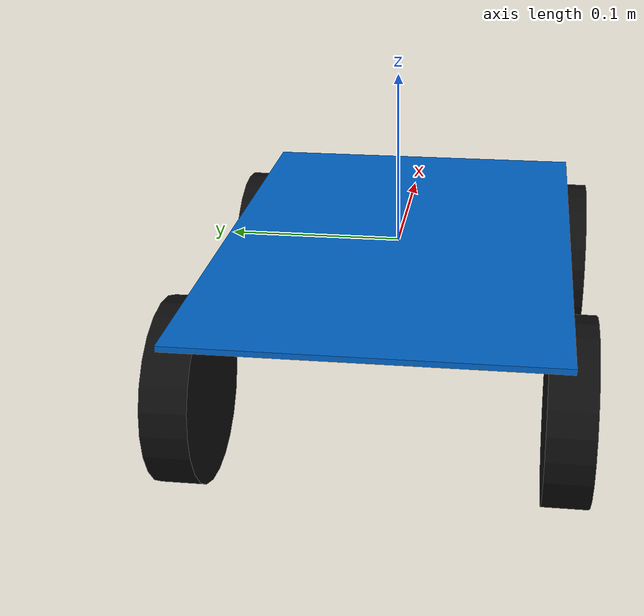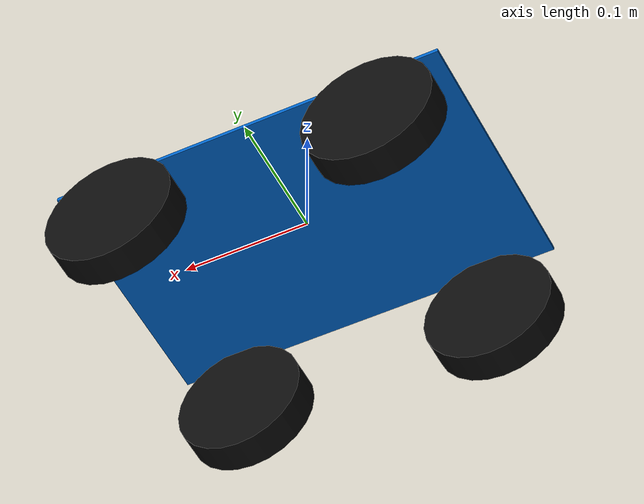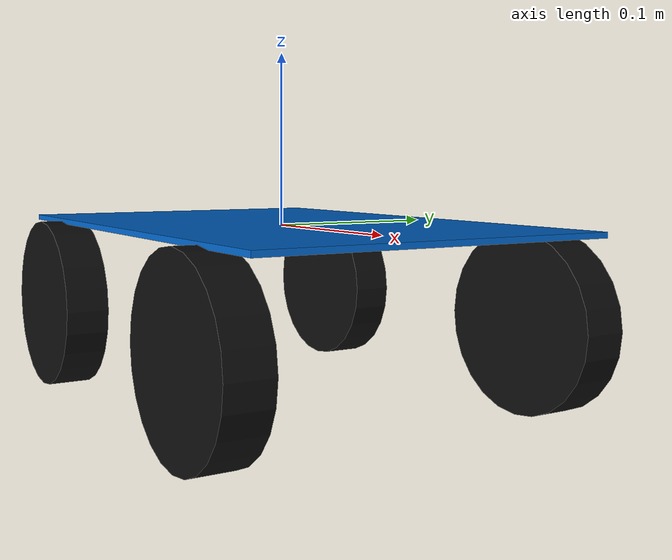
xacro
<?xml version="1.0"?>
<robot xmlns:xacro="http://www.ros.org/wiki/xacro" name="training_bot">

    <!-- gazebo | mujoco | mock -->
    <xacro:arg name="sim_backend" default="mock"/>
    <xacro:property name="sim_backend" value="$(arg sim_backend)"/>

    <!-- Base -->
    <link name="base_link">

        <inertial>
            <mass value="5.0"/>
            <origin xyz="0 0 0"/>
            <inertia
                ixx="0.02"
                ixy="0"
                ixz="0"
                iyy="0.04"
                iyz="0"
                izz="0.05"/>
        </inertial>

        <visual>
            <geometry>
                <box size="0.3048 0.2032 0.003175"/>
            </geometry>
            <material name="blue">
                <color rgba="0 0.4 0.8 1"/>
            </material>
        </visual>

        <collision>
            <geometry>
                <box size="0.3048 0.2032 0.003175"/>
            </geometry>
        </collision>

    </link>

    <!-- Wheel macro -->
    <xacro:macro name="wheel" params="name">

        <link name="${name}">

            <inertial>
                <mass value="0.2166"/>
                <origin xyz="0 0 0"/>
                <inertia
                    ixx="0.00028"
                    ixy="0"
                    ixz="0"
                    iyy="0.00015"
                    iyz="0"
                    izz="0.00015"/>
            </inertial>

            <visual>
                <origin rpy="1.5708 0 0"/>
                <geometry>
                    <cylinder radius="0.0508" length="0.025"/>
                </geometry>
                <material name="black">
                    <color rgba="0.05 0.05 0.05 1"/>
                </material>
            </visual>

            <collision>
                <origin rpy="1.5708 0 0"/>
                <geometry>
                    <cylinder radius="0.0508" length="0.025"/>
                </geometry>
            </collision>

        </link>

    </xacro:macro>

    <xacro:wheel name="front_left_wheel"/>
    <xacro:wheel name="front_right_wheel"/>
    <xacro:wheel name="back_left_wheel"/>
    <xacro:wheel name="back_right_wheel"/>

    <!-- ros2_control -->
    <xacro:include filename="ros2_control.xacro"/>
    <xacro:robot_ros2_control sim_backend="${sim_backend}"/>

    <!-- Gazebo hosts the controller_manager itself; no ros2_control_node in that case -->
    <xacro:if value="${sim_backend == 'gazebo'}">
        <gazebo>
            <plugin filename="gz_ros2_control-system" name="gz_ros2_control::GazeboSimROS2ControlPlugin">
                <parameters>$(find startup)/robots/training_bot/config/controllers.yaml</parameters>
            </plugin>
        </gazebo>
    </xacro:if>

    <!-- Wheel joints -->

    <joint name="front_left_wheel_joint" type="continuous">
        <origin xyz="0.1016 0.1016 -0.0508"/>
        <axis xyz="0 1 0"/>
        <parent link="base_link"/>
        <child link="front_left_wheel"/>
    </joint>

    <joint name="front_right_wheel_joint" type="continuous">
        <origin xyz="0.1016 -0.1016 -0.0508"/>
        <axis xyz="0 1 0"/>
        <parent link="base_link"/>
        <child link="front_right_wheel"/>
    </joint>

    <joint name="back_left_wheel_joint" type="continuous">
        <origin xyz="-0.1016 0.1016 -0.0508"/>
        <axis xyz="0 1 0"/>
        <parent link="base_link"/>
        <child link="back_left_wheel"/>
    </joint>

    <joint name="back_right_wheel_joint" type="continuous">
        <origin xyz="-0.1016 -0.1016 -0.0508"/>
        <axis xyz="0 1 0"/>
        <parent link="base_link"/>
        <child link="back_right_wheel"/>
    </joint>

</robot>
